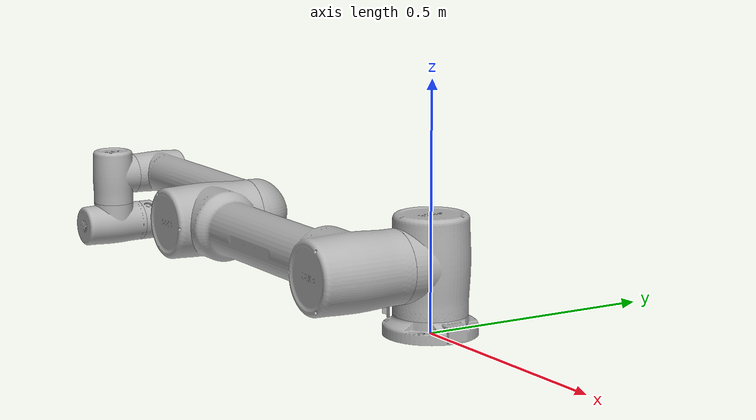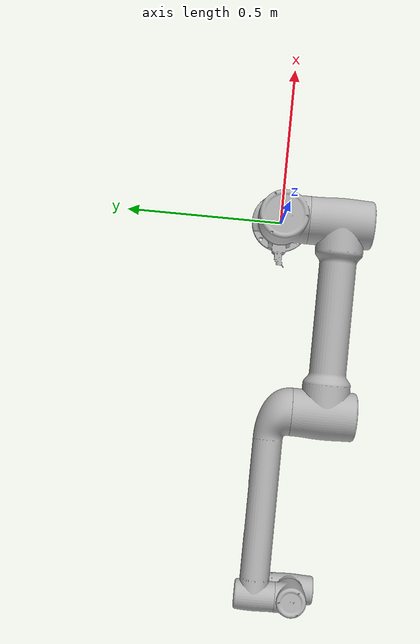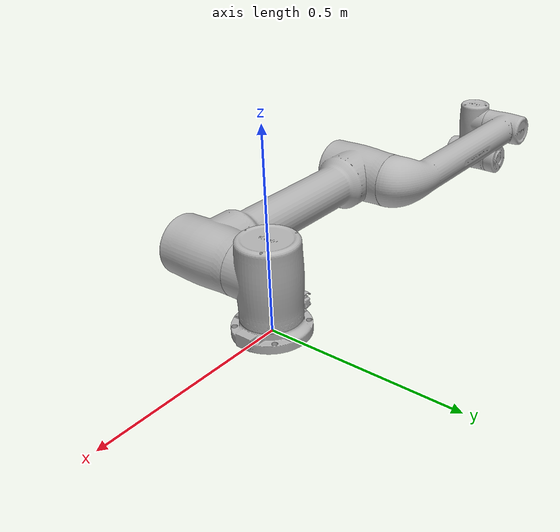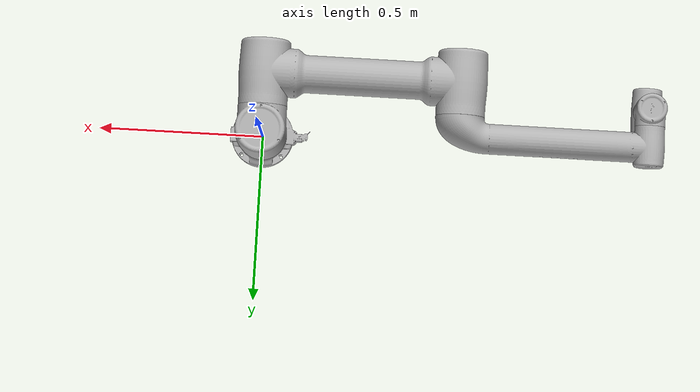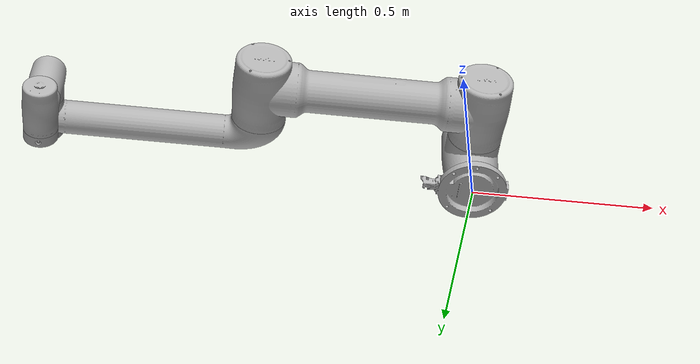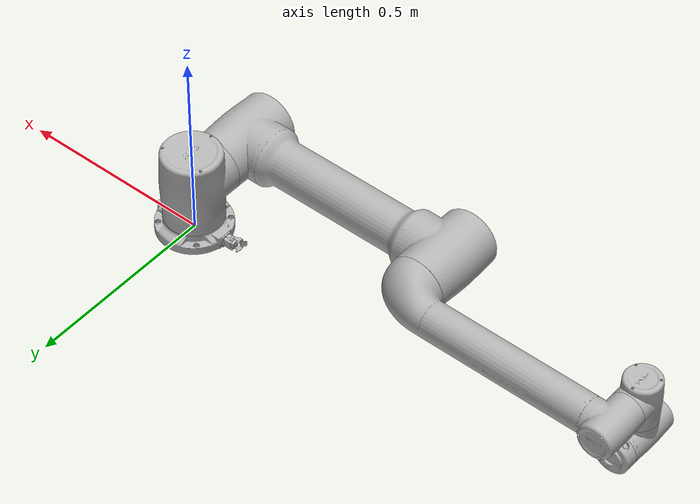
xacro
<?xml version="1.0" ?>
<robot name="JAKA_Pro_12-V2_20231016" xmlns:xacro="http://www.ros.org/wiki/xacro">

<xacro:include filename="$(find JAKA_Pro_12-V2_20231016_description)/urdf/materials.xacro" />
<xacro:include filename="$(find JAKA_Pro_12-V2_20231016_description)/urdf/JAKA_Pro_12-V2_20231016.trans" />
<xacro:include filename="$(find JAKA_Pro_12-V2_20231016_description)/urdf/JAKA_Pro_12-V2_20231016.gazebo" />
<link name="base_link">
  <inertial>
    <origin xyz="-0.0016782900421394677 -2.1937483929127514e-05 0.020196224870148483" rpy="0 0 0"/>
    <mass value="6.5019637631661835"/>
    <inertia ixx="0.013047" iyy="0.015808" izz="0.027337" ixy="5e-06" iyz="-4e-06" ixz="-5.4e-05"/>
  </inertial>
  <visual>
    <origin xyz="0 0 0" rpy="0 0 0"/>
    <geometry>
      <mesh filename="package://JAKA_Pro_12-V2_20231016_description/meshes/base_link.stl" scale="0.001 0.001 0.001"/>
    </geometry>
    <material name="silver"/>
  </visual>
  <collision>
    <origin xyz="0 0 0" rpy="0 0 0"/>
    <geometry>
      <mesh filename="package://JAKA_Pro_12-V2_20231016_description/meshes/base_link.stl" scale="0.001 0.001 0.001"/>
    </geometry>
  </collision>
</link>

<link name="Pro_12_01_1">
  <inertial>
    <origin xyz="-6.477800010082601e-08 -0.003972022097385985 0.09282168964672262" rpy="0 0 0"/>
    <mass value="29.682926311111036"/>
    <inertia ixx="0.137845" iyy="0.134623" izz="0.092604" ixy="-0.0" iyz="0.000286" ixz="0.0"/>
  </inertial>
  <visual>
    <origin xyz="0.0 0.0 -0.0465" rpy="0 0 0"/>
    <geometry>
      <mesh filename="package://JAKA_Pro_12-V2_20231016_description/meshes/Pro_12_01_1.stl" scale="0.001 0.001 0.001"/>
    </geometry>
    <material name="silver"/>
  </visual>
  <collision>
    <origin xyz="0.0 0.0 -0.0465" rpy="0 0 0"/>
    <geometry>
      <mesh filename="package://JAKA_Pro_12-V2_20231016_description/meshes/Pro_12_01_1.stl" scale="0.001 0.001 0.001"/>
    </geometry>
  </collision>
</link>

<link name="Pro_12_02_1">
  <inertial>
    <origin xyz="-0.29750007751176477 -0.09411766014986113 3.1060718219677597e-08" rpy="0 0 0"/>
    <mass value="97.72709028893016"/>
    <inertia ixx="0.340512" iyy="6.030985" izz="6.121663" ixy="-0.0" iyz="0.0" ixz="-0.0"/>
  </inertial>
  <visual>
    <origin xyz="0.0 0.0855 -0.14265" rpy="0 0 0"/>
    <geometry>
      <mesh filename="package://JAKA_Pro_12-V2_20231016_description/meshes/Pro_12_02_1.stl" scale="0.001 0.001 0.001"/>
    </geometry>
    <material name="silver"/>
  </visual>
  <collision>
    <origin xyz="0.0 0.0855 -0.14265" rpy="0 0 0"/>
    <geometry>
      <mesh filename="package://JAKA_Pro_12-V2_20231016_description/meshes/Pro_12_02_1.stl" scale="0.001 0.001 0.001"/>
    </geometry>
  </collision>
</link>

<link name="Pro_12_03_1">
  <inertial>
    <origin xyz="-0.27266022608420704 0.06288222212348828 -1.271154199178337e-06" rpy="0 0 0"/>
    <mass value="39.7604169195696"/>
    <inertia ixx="0.056604" iyy="1.727868" izz="1.730838" ixy="0.052998" iyz="-1e-06" ixz="1.2e-05"/>
  </inertial>
  <visual>
    <origin xyz="0.595 0.0855 -0.14265" rpy="0 0 0"/>
    <geometry>
      <mesh filename="package://JAKA_Pro_12-V2_20231016_description/meshes/Pro_12_03_1.stl" scale="0.001 0.001 0.001"/>
    </geometry>
    <material name="silver"/>
  </visual>
  <collision>
    <origin xyz="0.595 0.0855 -0.14265" rpy="0 0 0"/>
    <geometry>
      <mesh filename="package://JAKA_Pro_12-V2_20231016_description/meshes/Pro_12_03_1.stl" scale="0.001 0.001 0.001"/>
    </geometry>
  </collision>
</link>

<link name="Pro_12_04_1">
  <inertial>
    <origin xyz="9.04183643513079e-08 -0.047237123578206155 -0.0033884323691834584" rpy="0 0 0"/>
    <mass value="6.9377230117633975"/>
    <inertia ixx="0.012275" iyy="0.011814" izz="0.008265" ixy="0.0" iyz="-7.1e-05" ixz="-0.0"/>
  </inertial>
  <visual>
    <origin xyz="1.1665 0.081 -0.14265" rpy="0 0 0"/>
    <geometry>
      <mesh filename="package://JAKA_Pro_12-V2_20231016_description/meshes/Pro_12_04_1.stl" scale="0.001 0.001 0.001"/>
    </geometry>
    <material name="silver"/>
  </visual>
  <collision>
    <origin xyz="1.1665 0.081 -0.14265" rpy="0 0 0"/>
    <geometry>
      <mesh filename="package://JAKA_Pro_12-V2_20231016_description/meshes/Pro_12_04_1.stl" scale="0.001 0.001 0.001"/>
    </geometry>
  </collision>
</link>

<link name="Pro_12_05_1">
  <inertial>
    <origin xyz="-1.1753062190145158e-07 -0.005528709808314325 -0.050671540670844145" rpy="0 0 0"/>
    <mass value="8.003292102460861"/>
    <inertia ixx="0.01745" iyy="0.009337" izz="0.016979" ixy="-0.0" iyz="-0.000131" ixz="0.0"/>
  </inertial>
  <visual>
    <origin xyz="1.1665 0.1315 -0.08115" rpy="0 0 0"/>
    <geometry>
      <mesh filename="package://JAKA_Pro_12-V2_20231016_description/meshes/Pro_12_05_1.stl" scale="0.001 0.001 0.001"/>
    </geometry>
    <material name="silver"/>
  </visual>
  <collision>
    <origin xyz="1.1665 0.1315 -0.08115" rpy="0 0 0"/>
    <geometry>
      <mesh filename="package://JAKA_Pro_12-V2_20231016_description/meshes/Pro_12_05_1.stl" scale="0.001 0.001 0.001"/>
    </geometry>
  </collision>
</link>

<link name="Pro_12_06_1">
  <inertial>
    <origin xyz="-2.4494897551630146e-05 0.0174889102850369 -0.00014650417233688998" rpy="0 0 0"/>
    <mass value="1.7364131798673292"/>
    <inertia ixx="0.00103" iyy="0.001725" izz="0.001064" ixy="1e-06" iyz="0.0" ixz="1e-06"/>
  </inertial>
  <visual>
    <origin xyz="1.1665 0.067 -0.02765" rpy="0 0 0"/>
    <geometry>
      <mesh filename="package://JAKA_Pro_12-V2_20231016_description/meshes/Pro_12_06_1.stl" scale="0.001 0.001 0.001"/>
    </geometry>
    <material name="silver"/>
  </visual>
  <collision>
    <origin xyz="1.1665 0.067 -0.02765" rpy="0 0 0"/>
    <geometry>
      <mesh filename="package://JAKA_Pro_12-V2_20231016_description/meshes/Pro_12_06_1.stl" scale="0.001 0.001 0.001"/>
    </geometry>
  </collision>
</link>

<joint name="j1" type="continuous">
  <origin xyz="0.0 0.0 0.0465" rpy="0 0 0"/>
  <parent link="base_link"/>
  <child link="Pro_12_01_1"/>
  <axis xyz="-0.0 0.0 -1.0"/>
</joint>

<joint name="j2" type="continuous">
  <origin xyz="0.0 -0.0855 0.09615" rpy="0 0 0"/>
  <parent link="Pro_12_01_1"/>
  <child link="Pro_12_02_1"/>
  <axis xyz="0.0 1.0 0.0"/>
</joint>

<joint name="j3" type="continuous">
  <origin xyz="-0.595 0.0 0.0" rpy="0 0 0"/>
  <parent link="Pro_12_02_1"/>
  <child link="Pro_12_03_1"/>
  <axis xyz="0.0 1.0 0.0"/>
</joint>

<joint name="j4" type="continuous">
  <origin xyz="-0.5715 0.0045 0.0" rpy="0 0 0"/>
  <parent link="Pro_12_03_1"/>
  <child link="Pro_12_04_1"/>
  <axis xyz="-0.0 -1.0 -0.0"/>
</joint>

<joint name="j5" type="continuous">
  <origin xyz="0.0 -0.0505 -0.0615" rpy="0 0 0"/>
  <parent link="Pro_12_04_1"/>
  <child link="Pro_12_05_1"/>
  <axis xyz="-0.0 0.0 -1.0"/>
</joint>

<joint name="j6" type="continuous">
  <origin xyz="0.0 0.0645 -0.0535" rpy="0 0 0"/>
  <parent link="Pro_12_05_1"/>
  <child link="Pro_12_06_1"/>
  <axis xyz="0.0 1.0 0.0"/>
</joint>

</robot>

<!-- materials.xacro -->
<robot name="JAKA_Pro_12-V2_20231016" xmlns:xacro="http://www.ros.org/wiki/xacro" >

<material name="silver">
  <color rgba="0.700 0.700 0.700 1.000"/>
</material>

</robot>

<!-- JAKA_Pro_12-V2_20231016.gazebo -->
<robot name="JAKA_Pro_12-V2_20231016" xmlns:xacro="http://www.ros.org/wiki/xacro" >

<xacro:property name="body_color" value="Gazebo/Silver" />

<gazebo>
  <plugin name="control" filename="libgazebo_ros_control.so"/>
</gazebo>
<gazebo reference="base_link">
  <material>${body_color}</material>
  <mu1>0.2</mu1>
  <mu2>0.2</mu2>
  <selfCollide>true</selfCollide>
  <gravity>true</gravity>
</gazebo>

<gazebo reference="Pro_12_01_1">
  <material>${body_color}</material>
  <mu1>0.2</mu1>
  <mu2>0.2</mu2>
  <selfCollide>true</selfCollide>
</gazebo>

<gazebo reference="Pro_12_02_1">
  <material>${body_color}</material>
  <mu1>0.2</mu1>
  <mu2>0.2</mu2>
  <selfCollide>true</selfCollide>
</gazebo>

<gazebo reference="Pro_12_03_1">
  <material>${body_color}</material>
  <mu1>0.2</mu1>
  <mu2>0.2</mu2>
  <selfCollide>true</selfCollide>
</gazebo>

<gazebo reference="Pro_12_04_1">
  <material>${body_color}</material>
  <mu1>0.2</mu1>
  <mu2>0.2</mu2>
  <selfCollide>true</selfCollide>
</gazebo>

<gazebo reference="Pro_12_05_1">
  <material>${body_color}</material>
  <mu1>0.2</mu1>
  <mu2>0.2</mu2>
  <selfCollide>true</selfCollide>
</gazebo>

<gazebo reference="Pro_12_06_1">
  <material>${body_color}</material>
  <mu1>0.2</mu1>
  <mu2>0.2</mu2>
  <selfCollide>true</selfCollide>
</gazebo>

</robot>
